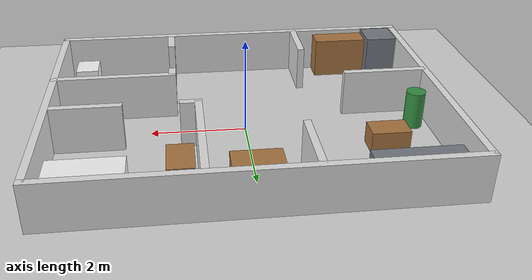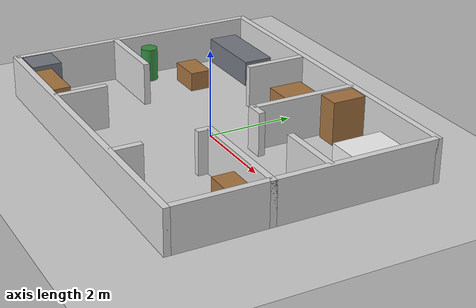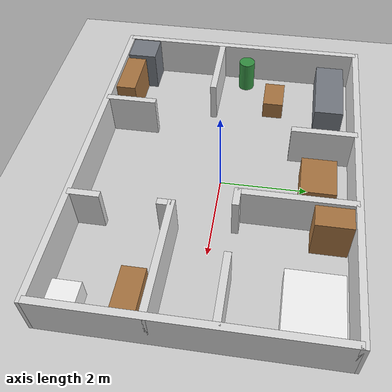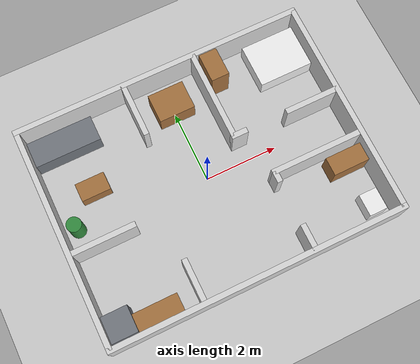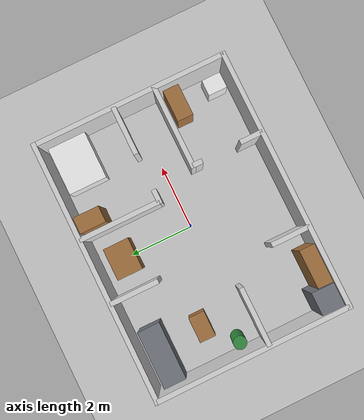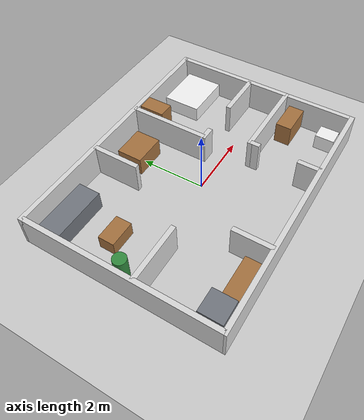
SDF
<?xml version="1.0" ?>
<!-- 自製小屋場景：8 m x 6 m，客廳／餐廳／臥室／廚房／浴室，給 SLAM 與 Navigation 測試用。
     座標原點在屋子正中央，X 範圍 -4 ~ 4，Y 範圍 -3 ~ 3。牆與家具都是靜態方塊。 -->
<sdf version="1.6">
  <world name="default">

    <include>
      <uri>model://ground_plane</uri>
    </include>

    <include>
      <uri>model://sun</uri>
    </include>

    <model name="wall_north">
      <static>true</static>
      <pose>0 3 0.5 0 0 0</pose>
      <link name="link">
        <collision name="collision">
          <geometry><box><size>8.15 0.15 1</size></box></geometry>
        </collision>
        <visual name="visual">
          <geometry><box><size>8.15 0.15 1</size></box></geometry>
          <material>
            <ambient>0.85 0.85 0.85 1</ambient>
            <diffuse>0.85 0.85 0.85 1</diffuse>
          </material>
        </visual>
      </link>
    </model>

    <model name="wall_south">
      <static>true</static>
      <pose>0 -3 0.5 0 0 0</pose>
      <link name="link">
        <collision name="collision">
          <geometry><box><size>8.15 0.15 1</size></box></geometry>
        </collision>
        <visual name="visual">
          <geometry><box><size>8.15 0.15 1</size></box></geometry>
          <material>
            <ambient>0.85 0.85 0.85 1</ambient>
            <diffuse>0.85 0.85 0.85 1</diffuse>
          </material>
        </visual>
      </link>
    </model>

    <model name="wall_west">
      <static>true</static>
      <pose>-4 0 0.5 0 0 0</pose>
      <link name="link">
        <collision name="collision">
          <geometry><box><size>0.15 6 1</size></box></geometry>
        </collision>
        <visual name="visual">
          <geometry><box><size>0.15 6 1</size></box></geometry>
          <material>
            <ambient>0.85 0.85 0.85 1</ambient>
            <diffuse>0.85 0.85 0.85 1</diffuse>
          </material>
        </visual>
      </link>
    </model>

    <model name="wall_east">
      <static>true</static>
      <pose>4 0 0.5 0 0 0</pose>
      <link name="link">
        <collision name="collision">
          <geometry><box><size>0.15 6 1</size></box></geometry>
        </collision>
        <visual name="visual">
          <geometry><box><size>0.15 6 1</size></box></geometry>
          <material>
            <ambient>0.85 0.85 0.85 1</ambient>
            <diffuse>0.85 0.85 0.85 1</diffuse>
          </material>
        </visual>
      </link>
    </model>

    <model name="bedroom_wall_west">
      <static>true</static>
      <pose>1 1.75 0.5 0 0 0</pose>
      <link name="link">
        <collision name="collision">
          <geometry><box><size>0.15 2.5 1</size></box></geometry>
        </collision>
        <visual name="visual">
          <geometry><box><size>0.15 2.5 1</size></box></geometry>
          <material>
            <ambient>0.85 0.85 0.85 1</ambient>
            <diffuse>0.85 0.85 0.85 1</diffuse>
          </material>
        </visual>
      </link>
    </model>

    <model name="bedroom_wall_south_a">
      <static>true</static>
      <pose>1.15 0.5 0.5 0 0 0</pose>
      <link name="link">
        <collision name="collision">
          <geometry><box><size>0.45 0.15 1</size></box></geometry>
        </collision>
        <visual name="visual">
          <geometry><box><size>0.45 0.15 1</size></box></geometry>
          <material>
            <ambient>0.85 0.85 0.85 1</ambient>
            <diffuse>0.85 0.85 0.85 1</diffuse>
          </material>
        </visual>
      </link>
    </model>

    <model name="bedroom_wall_south_b">
      <static>true</static>
      <pose>3.25 0.5 0.5 0 0 0</pose>
      <link name="link">
        <collision name="collision">
          <geometry><box><size>1.5 0.15 1</size></box></geometry>
        </collision>
        <visual name="visual">
          <geometry><box><size>1.5 0.15 1</size></box></geometry>
          <material>
            <ambient>0.85 0.85 0.85 1</ambient>
            <diffuse>0.85 0.85 0.85 1</diffuse>
          </material>
        </visual>
      </link>
    </model>

    <model name="bathroom_wall_north">
      <static>true</static>
      <pose>2.75 -0.8 0.5 0 0 0</pose>
      <link name="link">
        <collision name="collision">
          <geometry><box><size>2.65 0.15 1</size></box></geometry>
        </collision>
        <visual name="visual">
          <geometry><box><size>2.65 0.15 1</size></box></geometry>
          <material>
            <ambient>0.85 0.85 0.85 1</ambient>
            <diffuse>0.85 0.85 0.85 1</diffuse>
          </material>
        </visual>
      </link>
    </model>

    <model name="bathroom_wall_west_a">
      <static>true</static>
      <pose>1.5 -2.65 0.5 0 0 0</pose>
      <link name="link">
        <collision name="collision">
          <geometry><box><size>0.15 0.7 1</size></box></geometry>
        </collision>
        <visual name="visual">
          <geometry><box><size>0.15 0.7 1</size></box></geometry>
          <material>
            <ambient>0.85 0.85 0.85 1</ambient>
            <diffuse>0.85 0.85 0.85 1</diffuse>
          </material>
        </visual>
      </link>
    </model>

    <model name="bathroom_wall_west_b">
      <static>true</static>
      <pose>1.5 -0.95 0.5 0 0 0</pose>
      <link name="link">
        <collision name="collision">
          <geometry><box><size>0.15 0.3 1</size></box></geometry>
        </collision>
        <visual name="visual">
          <geometry><box><size>0.15 0.3 1</size></box></geometry>
          <material>
            <ambient>0.85 0.85 0.85 1</ambient>
            <diffuse>0.85 0.85 0.85 1</diffuse>
          </material>
        </visual>
      </link>
    </model>

    <model name="kitchen_wall_north">
      <static>true</static>
      <pose>-3.1 -0.5 0.5 0 0 0</pose>
      <link name="link">
        <collision name="collision">
          <geometry><box><size>1.8 0.15 1</size></box></geometry>
        </collision>
        <visual name="visual">
          <geometry><box><size>1.8 0.15 1</size></box></geometry>
          <material>
            <ambient>0.85 0.85 0.85 1</ambient>
            <diffuse>0.85 0.85 0.85 1</diffuse>
          </material>
        </visual>
      </link>
    </model>

    <model name="kitchen_wall_east">
      <static>true</static>
      <pose>-1.5 -2.4 0.5 0 0 0</pose>
      <link name="link">
        <collision name="collision">
          <geometry><box><size>0.15 1.2 1</size></box></geometry>
        </collision>
        <visual name="visual">
          <geometry><box><size>0.15 1.2 1</size></box></geometry>
          <material>
            <ambient>0.85 0.85 0.85 1</ambient>
            <diffuse>0.85 0.85 0.85 1</diffuse>
          </material>
        </visual>
      </link>
    </model>

    <model name="dining_wall_west">
      <static>true</static>
      <pose>-1 2.25 0.5 0 0 0</pose>
      <link name="link">
        <collision name="collision">
          <geometry><box><size>0.15 1.5 1</size></box></geometry>
        </collision>
        <visual name="visual">
          <geometry><box><size>0.15 1.5 1</size></box></geometry>
          <material>
            <ambient>0.85 0.85 0.85 1</ambient>
            <diffuse>0.85 0.85 0.85 1</diffuse>
          </material>
        </visual>
      </link>
    </model>

    <!-- ===== 家具：都高於 LiDAR（離地約 0.33 m），掃得到 ===== -->

    <model name="sofa">
      <static>true</static>
      <pose>-3 2.4 0.3 0 0 0</pose>
      <link name="link">
        <collision name="collision">
          <geometry><box><size>1.8 0.7 0.6</size></box></geometry>
        </collision>
        <visual name="visual">
          <geometry><box><size>1.8 0.7 0.6</size></box></geometry>
          <material>
            <ambient>0.45 0.47 0.50 1</ambient>
            <diffuse>0.45 0.47 0.50 1</diffuse>
          </material>
        </visual>
      </link>
    </model>

    <model name="coffee_table">
      <static>true</static>
      <pose>-2.8 1 0.225 0 0 0</pose>
      <link name="link">
        <collision name="collision">
          <geometry><box><size>0.8 0.5 0.45</size></box></geometry>
        </collision>
        <visual name="visual">
          <geometry><box><size>0.8 0.5 0.45</size></box></geometry>
          <material>
            <ambient>0.65 0.45 0.25 1</ambient>
            <diffuse>0.65 0.45 0.25 1</diffuse>
          </material>
        </visual>
      </link>
    </model>

    <model name="dining_table">
      <static>true</static>
      <pose>0 2.2 0.3 0 0 0</pose>
      <link name="link">
        <collision name="collision">
          <geometry><box><size>1 0.8 0.6</size></box></geometry>
        </collision>
        <visual name="visual">
          <geometry><box><size>1 0.8 0.6</size></box></geometry>
          <material>
            <ambient>0.65 0.45 0.25 1</ambient>
            <diffuse>0.65 0.45 0.25 1</diffuse>
          </material>
        </visual>
      </link>
    </model>

    <model name="bed">
      <static>true</static>
      <pose>3.15 2.2 0.25 0 0 0</pose>
      <link name="link">
        <collision name="collision">
          <geometry><box><size>1.5 1.2 0.5</size></box></geometry>
        </collision>
        <visual name="visual">
          <geometry><box><size>1.5 1.2 0.5</size></box></geometry>
          <material>
            <ambient>0.95 0.95 0.95 1</ambient>
            <diffuse>0.95 0.95 0.95 1</diffuse>
          </material>
        </visual>
      </link>
    </model>

    <model name="wardrobe">
      <static>true</static>
      <pose>1.4 2.5 0.5 0 0 0</pose>
      <link name="link">
        <collision name="collision">
          <geometry><box><size>0.5 0.8 1</size></box></geometry>
        </collision>
        <visual name="visual">
          <geometry><box><size>0.5 0.8 1</size></box></geometry>
          <material>
            <ambient>0.65 0.45 0.25 1</ambient>
            <diffuse>0.65 0.45 0.25 1</diffuse>
          </material>
        </visual>
      </link>
    </model>

    <model name="fridge">
      <static>true</static>
      <pose>-3.55 -2.55 0.5 0 0 0</pose>
      <link name="link">
        <collision name="collision">
          <geometry><box><size>0.7 0.7 1</size></box></geometry>
        </collision>
        <visual name="visual">
          <geometry><box><size>0.7 0.7 1</size></box></geometry>
          <material>
            <ambient>0.45 0.47 0.50 1</ambient>
            <diffuse>0.45 0.47 0.50 1</diffuse>
          </material>
        </visual>
      </link>
    </model>

    <model name="kitchen_counter">
      <static>true</static>
      <pose>-2.6 -2.7 0.45 0 0 0</pose>
      <link name="link">
        <collision name="collision">
          <geometry><box><size>1.2 0.5 0.9</size></box></geometry>
        </collision>
        <visual name="visual">
          <geometry><box><size>1.2 0.5 0.9</size></box></geometry>
          <material>
            <ambient>0.65 0.45 0.25 1</ambient>
            <diffuse>0.65 0.45 0.25 1</diffuse>
          </material>
        </visual>
      </link>
    </model>

    <model name="desk">
      <static>true</static>
      <pose>3.4 -1.25 0.35 0 0 0</pose>
      <link name="link">
        <collision name="collision">
          <geometry><box><size>1 0.5 0.7</size></box></geometry>
        </collision>
        <visual name="visual">
          <geometry><box><size>1 0.5 0.7</size></box></geometry>
          <material>
            <ambient>0.65 0.45 0.25 1</ambient>
            <diffuse>0.65 0.45 0.25 1</diffuse>
          </material>
        </visual>
      </link>
    </model>

    <model name="toilet">
      <static>true</static>
      <pose>3.5 -2.5 0.25 0 0 0</pose>
      <link name="link">
        <collision name="collision">
          <geometry><box><size>0.5 0.6 0.5</size></box></geometry>
        </collision>
        <visual name="visual">
          <geometry><box><size>0.5 0.6 0.5</size></box></geometry>
          <material>
            <ambient>0.95 0.95 0.95 1</ambient>
            <diffuse>0.95 0.95 0.95 1</diffuse>
          </material>
        </visual>
      </link>
    </model>

    <model name="plant">
      <static>true</static>
      <pose>-3.6 0.2 0.4 0 0 0</pose>
      <link name="link">
        <collision name="collision">
          <geometry><cylinder><radius>0.2</radius><length>0.8</length></cylinder></geometry>
        </collision>
        <visual name="visual">
          <geometry><cylinder><radius>0.2</radius><length>0.8</length></cylinder></geometry>
          <material>
            <ambient>0.20 0.55 0.25 1</ambient>
            <diffuse>0.20 0.55 0.25 1</diffuse>
          </material>
        </visual>
      </link>
    </model>

  </world>
</sdf>
